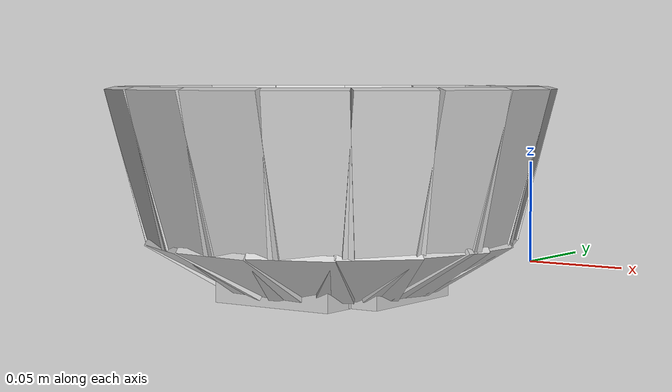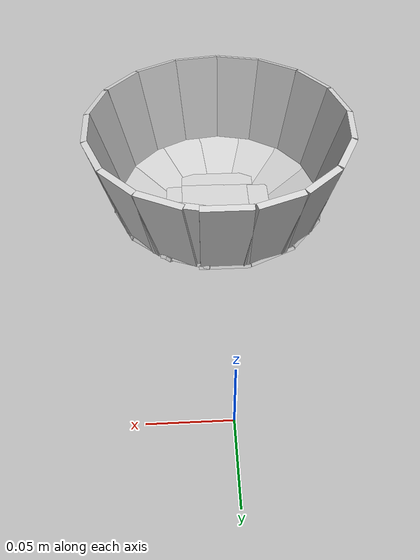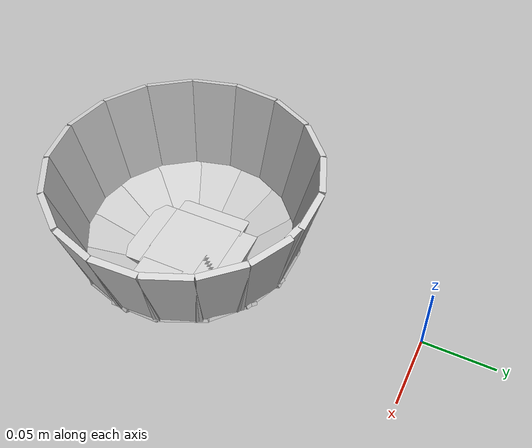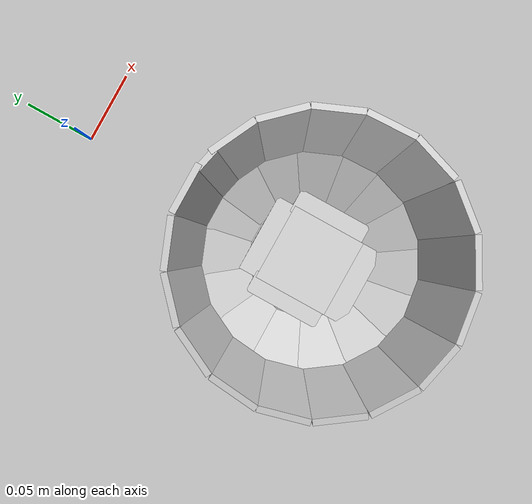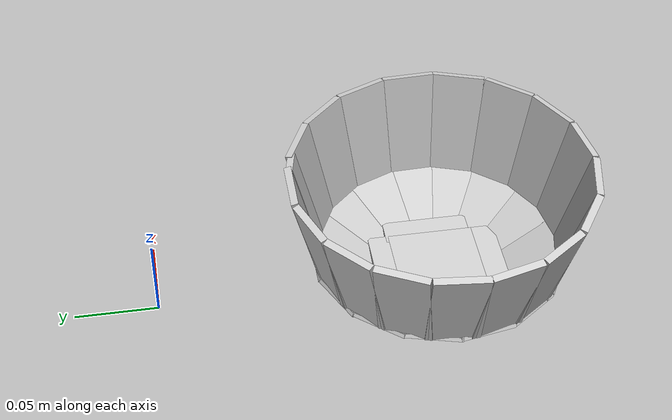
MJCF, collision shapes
<mujoco model="large_akita_black_bowl">
  <asset>
  <texture file="texture.png" name="tex-large_akita_black_bowl" type="2d" />
  <material name="large_akita_black_bowl" reflectance="0.5" texrepeat="1 1" texture="tex-large_akita_black_bowl" texuniform="false" />
  <mesh file="visual/large_akita_black_bowl_vis.msh" name="large_akita_black_bowl_vis" scale="1.19 1.19 1.19" /></asset>
  <worldbody>
    <body>
      <body name="object" pos="0 -0.17 0">
      <geom solimp="0.998 0.998 0.001" solref="0.001 1" density="100" friction="0.95 0.3 0.1" type="mesh" mesh="large_akita_black_bowl_vis" conaffinity="0" contype="0" group="1" material="large_akita_black_bowl" /><geom solimp="0.998 0.998 0.001" solref="0.001 1" density="100" friction="0.95 0.3 0.1" type="box" pos="-0.00017 0.057137 0.015963" quat="0.60990 -0.35780 -0.35780 -0.60990" size="0.001207 0.016864 0.020179" group="0" rgba="0.8 0.8 0.8 0.3" /><geom solimp="0.998 0.998 0.001" solref="0.001 1" density="100" friction="0.95 0.3 0.1" type="box" pos="-0.024973 0.051289 0.016303" quat="0.45959 -0.42672 0.26704 0.73169" size="0.001207 0.016864 0.020179" group="0" rgba="0.8 0.8 0.8 0.3" /><geom solimp="0.998 0.998 0.001" solref="0.001 1" density="100" friction="0.95 0.3 0.1" type="box" pos="-0.044285 0.035836 0.016575" quat="0.29172 -0.47299 0.16619 0.81459" size="0.001207 0.016864 0.020179" group="0" rgba="0.8 0.8 0.8 0.3" /><geom solimp="0.998 0.998 0.001" solref="0.001 1" density="100" friction="0.95 0.3 0.1" type="box" pos="-0.055301 0.013481 0.016728" quat="0.10855 -0.49698 0.05658 0.85908" size="0.001207 0.016864 0.020179" group="0" rgba="0.8 0.8 0.8 0.3" /><geom solimp="0.998 0.998 0.001" solref="0.001 1" density="100" friction="0.95 0.3 0.1" type="box" pos="-0.055879 -0.010795 0.016728" quat="0.49761 -0.07722 0.86246 0.05074" size="0.001207 0.016864 0.020179" group="0" rgba="0.8 0.8 0.8 0.3" /><geom solimp="0.998 0.998 0.001" solref="0.001 1" density="100" friction="0.95 0.3 0.1" type="box" pos="-0.045764 -0.03383 0.016728" quat="0.47408 -0.26597 0.82406 0.15949" size="0.001207 0.016864 0.020179" group="0" rgba="0.8 0.8 0.8 0.3" /><geom solimp="0.998 0.998 0.001" solref="0.001 1" density="100" friction="0.95 0.3 0.1" type="box" pos="-0.026469 -0.050388 0.016728" quat="0.42646 -0.44336 0.74380 0.26138" size="0.001207 0.016864 0.020179" group="0" rgba="0.8 0.8 0.8 0.3" /><geom solimp="0.998 0.998 0.001" solref="0.001 1" density="100" friction="0.95 0.3 0.1" type="box" pos="-0.002057 -0.056882 0.016728" quat="0.59728 0.35787 0.34946 -0.62695" size="0.001207 0.016864 0.020179" group="0" rgba="0.8 0.8 0.8 0.3" /><geom solimp="0.998 0.998 0.001" solref="0.001 1" density="100" friction="0.95 0.3 0.1" type="box" pos="0.022967 -0.052071 0.016728" quat="0.72249 0.27055 0.42070 -0.47731" size="0.001207 0.016864 0.020179" group="0" rgba="0.8 0.8 0.8 0.3" /><geom solimp="0.998 0.998 0.001" solref="0.001 1" density="100" friction="0.95 0.3 0.1" type="box" pos="0.042891 -0.037417 0.016728" quat="0.17267 -0.80894 0.30891 0.46945" size="0.001207 0.016864 0.020179" group="0" rgba="0.8 0.8 0.8 0.3" /><geom solimp="0.998 0.998 0.001" solref="0.001 1" density="100" friction="0.95 0.3 0.1" type="box" pos="0.054774 -0.01547 0.016728" quat="0.85700 0.06550 0.49588 -0.12397" size="0.001207 0.016864 0.020179" group="0" rgba="0.8 0.8 0.8 0.3" /><geom solimp="0.998 0.998 0.001" solref="0.001 1" density="100" friction="0.95 0.3 0.1" type="box" pos="0.054774 -0.01547 0.016728" quat="0.85700 0.06550 0.49588 -0.12397" size="0.001207 0.016864 0.020179" group="0" rgba="0.8 0.8 0.8 0.3" /><geom solimp="0.998 0.998 0.001" solref="0.001 1" density="100" friction="0.95 0.3 0.1" type="box" pos="0.056916 0.000374 0.016728" quat="0.86591 -0.00473 0.50017 -0.00248" size="0.001207 0.016864 0.020179" group="0" rgba="0.8 0.8 0.8 0.3" /><geom solimp="0.998 0.998 0.001" solref="0.001 1" density="100" friction="0.95 0.3 0.1" type="box" pos="0.051612 0.023987 0.016728" quat="0.84663 -0.11101 0.48771 0.18175" size="0.001207 0.016864 0.020179" group="0" rgba="0.8 0.8 0.8 0.3" /><geom solimp="0.998 0.998 0.001" solref="0.001 1" density="100" friction="0.95 0.3 0.1" type="box" pos="0.036652 0.043554 0.016728" quat="0.21392 0.78724 0.36065 -0.45213" size="0.001207 0.016864 0.020179" group="0" rgba="0.8 0.8 0.8 0.3" /><geom solimp="0.998 0.998 0.001" solref="0.001 1" density="100" friction="0.95 0.3 0.1" type="box" pos="0.019669 0.053414 0.016728" quat="0.71324 -0.28870 0.40847 0.49101" size="0.001207 0.016864 0.020179" group="0" rgba="0.8 0.8 0.8 0.3" /><geom solimp="0.998 0.998 0.001" solref="0.001 1" density="100" friction="0.95 0.3 0.1" type="box" pos="-0.00017 0.080104 0.057239" quat="0.09041 0.70130 0.70130 -0.09041" size="0.002176 0.015878 0.031875" group="0" rgba="0.8 0.8 0.8 0.3" /><geom solimp="0.998 0.998 0.001" solref="0.001 1" density="100" friction="0.95 0.3 0.1" type="box" pos="-0.029308 0.074545 0.057239" quat="0.10558 0.55930 0.81905 -0.07209" size="0.002176 0.015878 0.031875" group="0" rgba="0.8 0.8 0.8 0.3" /><geom solimp="0.998 0.998 0.001" solref="0.001 1" density="100" friction="0.95 0.3 0.1" type="box" pos="-0.053958 0.059211 0.057239" quat="0.11689 0.40164 0.90683 -0.05176" size="0.002176 0.015878 0.031875" group="0" rgba="0.8 0.8 0.8 0.3" /><geom solimp="0.998 0.998 0.001" solref="0.001 1" density="100" friction="0.95 0.3 0.1" type="box" pos="-0.071638 0.035836 0.057239" quat="0.22890 -0.12439 0.02951 0.96502" size="0.002176 0.015878 0.031875" group="0" rgba="0.8 0.8 0.8 0.3" /><geom solimp="0.998 0.998 0.001" solref="0.001 1" density="100" friction="0.95 0.3 0.1" type="box" pos="-0.079713 0.00782 0.057239" quat="0.12768 0.04949 0.99056 -0.00638" size="0.002176 0.015878 0.031875" group="0" rgba="0.8 0.8 0.8 0.3" /><geom solimp="0.998 0.998 0.001" solref="0.001 1" density="100" friction="0.95 0.3 0.1" type="box" pos="-0.077435 -0.020468 0.057239" quat="0.12679 0.12680 0.01635 -0.98366" size="0.002176 0.015878 0.031875" group="0" rgba="0.8 0.8 0.8 0.3" /><geom solimp="0.998 0.998 0.001" solref="0.001 1" density="100" friction="0.95 0.3 0.1" type="box" pos="-0.065025 -0.046767 0.057239" quat="0.12173 -0.30325 0.94430 0.03909" size="0.002176 0.015878 0.031875" group="0" rgba="0.8 0.8 0.8 0.3" /><geom solimp="0.998 0.998 0.001" solref="0.001 1" density="100" friction="0.95 0.3 0.1" type="box" pos="-0.043792 -0.067082 0.057239" quat="0.11249 -0.47128 0.87267 0.06075" size="0.002176 0.015878 0.031875" group="0" rgba="0.8 0.8 0.8 0.3" /><geom solimp="0.998 0.998 0.001" solref="0.001 1" density="100" friction="0.95 0.3 0.1" type="box" pos="-0.01717 -0.078234 0.057239" quat="0.62080 0.09971 0.08003 -0.77348" size="0.002176 0.015878 0.031875" group="0" rgba="0.8 0.8 0.8 0.3" /><geom solimp="0.998 0.998 0.001" solref="0.001 1" density="100" friction="0.95 0.3 0.1" type="box" pos="0.011866 -0.07922 0.057239" quat="0.75082 0.08352 0.09678 -0.64802" size="0.002176 0.015878 0.031875" group="0" rgba="0.8 0.8 0.8 0.3" /><geom solimp="0.998 0.998 0.001" solref="0.001 1" density="100" friction="0.95 0.3 0.1" type="box" pos="0.039525 -0.069666 0.057239" quat="0.06445 -0.85651 0.50004 0.11041" size="0.002176 0.015878 0.031875" group="0" rgba="0.8 0.8 0.8 0.3" /><geom solimp="0.998 0.998 0.001" solref="0.001 1" density="100" friction="0.95 0.3 0.1" type="box" pos="0.061727 -0.051051 0.057239" quat="0.93283 0.04342 0.12024 -0.33687" size="0.002176 0.015878 0.031875" group="0" rgba="0.8 0.8 0.8 0.3" /><geom solimp="0.998 0.998 0.001" solref="0.001 1" density="100" friction="0.95 0.3 0.1" type="box" pos="0.076075 -0.025075 0.057239" quat="0.02040 -0.97909 0.15826 0.12620" size="0.002176 0.015878 0.031875" group="0" rgba="0.8 0.8 0.8 0.3" /><geom solimp="0.998 0.998 0.001" solref="0.001 1" density="100" friction="0.95 0.3 0.1" type="box" pos="0.080036 0.003145 0.057239" quat="0.00238 0.99162 0.01844 -0.12782" size="0.002176 0.015878 0.031875" group="0" rgba="0.8 0.8 0.8 0.3" /><geom solimp="0.998 0.998 0.001" solref="0.001 1" density="100" friction="0.95 0.3 0.1" type="box" pos="0.080036 0.003145 0.057239" quat="0.00238 0.99162 0.01844 -0.12782" size="0.002176 0.015878 0.031875" group="0" rgba="0.8 0.8 0.8 0.3" /><geom solimp="0.998 0.998 0.001" solref="0.001 1" density="100" friction="0.95 0.3 0.1" type="box" pos="0.073797 0.031144 0.057239" quat="0.02524 0.97229 0.19574 -0.12533" size="0.002176 0.015878 0.031875" group="0" rgba="0.8 0.8 0.8 0.3" /><geom solimp="0.998 0.998 0.001" solref="0.001 1" density="100" friction="0.95 0.3 0.1" type="box" pos="0.058072 0.055165 0.057239" quat="0.04729 0.92146 0.36683 -0.11878" size="0.002176 0.015878 0.031875" group="0" rgba="0.8 0.8 0.8 0.3" /><geom solimp="0.998 0.998 0.001" solref="0.001 1" density="100" friction="0.95 0.3 0.1" type="box" pos="0.035139 0.071978 0.057239" quat="0.06760 0.84175 0.52452 -0.10850" size="0.002176 0.015878 0.031875" group="0" rgba="0.8 0.8 0.8 0.3" /><geom solimp="0.998 0.998 0.001" solref="0.001 1" density="100" friction="0.95 0.3 0.1" type="box" pos="0.017952 0.078064 0.057239" quat="0.07953 0.77656 0.61693 -0.10010" size="0.002125 0.007548 0.031824" group="0" rgba="0.8 0.8 0.8 0.3" /><geom solimp="0.998 0.998 0.001" solref="0.001 1" density="100" friction="0.95 0.3 0.1" type="box" pos="-0 -0.001275 0.007089" quat="0.70711 0.00000 0.70711 0.00000" size="0.004386 0.026299 0.027489" group="0" rgba="0.8 0.8 0.8 0.3" /><geom solimp="0.998 0.998 0.001" solref="0.001 1" density="100" friction="0.95 0.3 0.1" type="box" pos="-0 -0.034357 0.007089" quat="0.70711 0.00000 0.70711 0.00000" size="0.004386 0.007327 0.027489" group="0" rgba="0.8 0.8 0.8 0.3" /><geom solimp="0.998 0.998 0.001" solref="0.001 1" density="100" friction="0.95 0.3 0.1" type="box" pos="0.030957 0.000272 0.007089" quat="0.50000 -0.50000 0.50000 0.50000" size="0.004386 0.008415 0.026299" group="0" rgba="0.8 0.8 0.8 0.3" /><geom solimp="0.998 0.998 0.001" solref="0.001 1" density="100" friction="0.95 0.3 0.1" type="box" pos="-0.03077 6.8e-05 0.007089" quat="0.50000 -0.50000 0.50000 0.50000" size="0.004386 0.007701 0.026299" group="0" rgba="0.8 0.8 0.8 0.3" /><geom solimp="0.998 0.998 0.001" solref="0.001 1" density="100" friction="0.95 0.3 0.1" type="box" pos="-0 0.02533 0.007089" quat="0.00000 0.70711 0.00000 -0.70711" size="0.004386 0.012597 0.027489" group="0" rgba="0.8 0.8 0.8 0.3" /></body>
      <site rgba="0 0 0 0" size="0.0085" pos="0 0 -0.102" name="bottom_site" />
      <site rgba="0 0 0 0" size="0.0085" pos="0 0 0.068" name="top_site" />
      <site rgba="0 0 0 0" size="0.0085" pos="0.0425 0.0425 0" name="horizontal_radius_site" />
    </body>
  </worldbody>
</mujoco>
